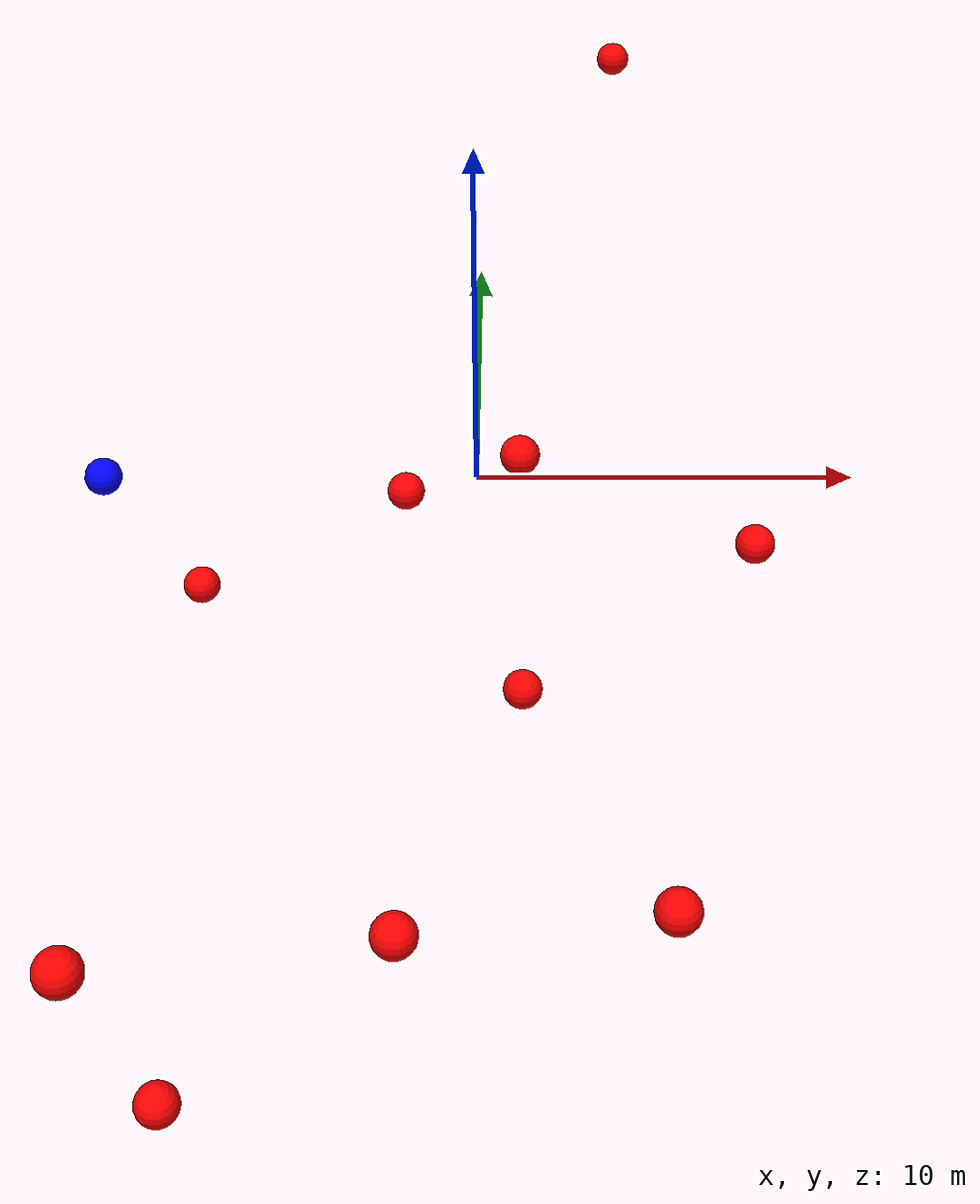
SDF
<?xml version="1.0" ?>
<sdf version="1.8">
    <world name="3d_world">
        <physics name="1ms" type="ode">
            <max_step_size>0.001</max_step_size>
            <real_time_factor>1.0</real_time_factor>
            <real_time_update_rate>1000.0</real_time_update_rate>
        </physics>
        <gravity>0 0 0</gravity>

        <plugin
            filename="gz-sim-physics-system"
            name="gz::sim::v8::systems::Physics">
        </plugin>
        <plugin
            filename="libignition-gazebo-user-commands-system.so"
            name="ignition::gazebo::systems::UserCommands">
        </plugin>
        <plugin
            filename="gz-sim-scene-broadcaster-system"
            name="gz::sim::systems::SceneBroadcaster">
        </plugin>
        <plugin
            filename="gz-sim-sensors-system"
            name="gz::sim::systems::Sensors">
            <render_engine>ogre2</render_engine>
        </plugin>

        <light type="directional" name="sun">
            <cast_shadows>true</cast_shadows>
            <pose>0 0 10 0 0 0</pose>
            <diffuse>0.8 0.8 0.8 1</diffuse>
            <specular>0.2 0.2 0.2 1</specular>
            <attenuation>
                <range>1000</range>
                <constant>0.9</constant>
                <linear>0.01</linear>
                <quadratic>0.001</quadratic>
            </attenuation>
            <direction>-0.5 0.1 -0.9</direction>
        </light>

        <!-- AGENTE -->
        <model name='agente' canonical_link='chassis'>
            <pose relative_to='world'>-10.0 0 0.0 0 0 0</pose>
            <link name='chassis'>
                <pose relative_to='__model__'>0.0 0 0.0 0 0 0</pose>
                <inertial>
                    <mass>1.14395</mass>
                    <inertia>
                        <ixx>0.095329</ixx>
                        <ixy>0</ixy>
                        <ixz>0</ixz>
                        <iyy>0.381317</iyy>
                        <iyz>0</iyz>
                        <izz>0.476646</izz>
                    </inertia>
                </inertial>
                <visual name='visual'>
                    <geometry>
                        <sphere>
                            <radius>0.5</radius>
                        </sphere>
                    </geometry>
                    <material>
                        <ambient>0.0 0.0 1.0 1</ambient>
                        <diffuse>0.0 0.0 1.0 1</diffuse>
                        <specular>0.0 0.0 1.0 1</specular>
                    </material>
                </visual>
                <collision name='collision'>
                    <geometry>
                        <sphere>
                            <radius>0.5</radius>
                        </sphere>
                    </geometry>
                </collision>
                <enable_gravity>false</enable_gravity>
            </link>

            <link name='lidar_link'>
                <pose relative_to='chassis'>0.0 0 0.1 0 0 0</pose>
                <inertial>
                    <mass>0.1</mass>
                    <inertia>
                        <ixx>0.000166667</ixx>
                        <iyy>0.000166667</iyy>
                        <izz>0.000166667</izz>
                    </inertia>
                </inertial>
                <collision name='collision'>
                    <geometry>
                        <cylinder>
                            <radius>0.05</radius>
                            <length>0.1</length>
                        </cylinder>
                    </geometry>
                </collision>
                <visual name='visual'>
                    <geometry>
                        <cylinder>
                            <radius>0.05</radius>
                            <length>0.1</length>
                        </cylinder>
                    </geometry>
                    <material>
                        <ambient>0.0 1.0 0.0 1</ambient>
                        <diffuse>0.0 1.0 0.0 1</diffuse>
                        <specular>0.0 1.0 0.0 1</specular>
                    </material>
                </visual>
                <sensor name="lidar" type="gpu_lidar">
                    <topic>scan</topic>
                    <update_rate>10</update_rate>
                    <lidar>
                        <scan>
                            <horizontal>
                                <samples>5000</samples>
                                <resolution>1</resolution>
                                <min_angle>-3.14159</min_angle>
                                <max_angle>3.14159</max_angle>
                            </horizontal>
                        </scan>
                        <range>
                            <min>0.1</min>
                            <max>10.0</max>
                            <resolution>0.01</resolution>
                        </range>
                    </lidar>
                    <visualize>true</visualize>
                    <always_on>true</always_on>
                    <update_rate>10</update_rate>
                    <pose_frame>lidar</pose_frame>
                </sensor>
                <enable_gravity>false</enable_gravity>
            </link>

            <joint name="lidar_joint" type="fixed">
                <parent>chassis</parent>
                <child>lidar_link</child>
            </joint>

            <plugin
                filename="ignition-gazebo-joint-state-publisher-system"
                name="ignition::gazebo::systems::JointStatePublisher">
            </plugin>
            <plugin
                filename="ignition-gazebo-odometry-publisher-system"
                name="ignition::gazebo::systems::OdometryPublisher">
                <dimensions>3</dimensions>
            </plugin>
            <plugin
                filename="ignition-gazebo-velocity-control-system"
                name="ignition::gazebo::systems::VelocityControl">
                <initial_linear>0.0 0 0</initial_linear>
                <initial_angular>0 0 0.0</initial_angular>
            </plugin>
            <plugin
                filename="libignition-gazebo-pose-publisher-system.so"
                name="ignition::gazebo::systems::PosePublisher">
                <topic>/agente/pose</topic>
                <frame_id>agente</frame_id>
                <update_rate>30</update_rate>
            </plugin>
        </model>

        <!-- OBSTACLE 1 -->
        <model name='obstacle_1' canonical_link='obstacle'>
            <static>false</static>
            <pose relative_to='world'>-7.56 -0.79 -3.17 0 0 0</pose>
            <link name='obstacle'>
                <pose relative_to='__model__'>0.0 0 0.0 0 0 0</pose>
                <visual name='visual'>
                    <geometry>
                        <sphere>
                            <radius>0.50</radius>
                        </sphere>
                    </geometry>
                    <material>
                        <ambient>1.0 0.0 0.0 1</ambient>
                        <diffuse>1.0 0.0 0.0 1</diffuse>
                        <specular>1.0 0.0 0.0 1</specular>
                    </material>
                </visual>
                <collision name='collision'>
                    <geometry>
                        <sphere>
                            <radius>0.50</radius>
                        </sphere>
                    </geometry>
                </collision>
                <enable_gravity>false</enable_gravity>
            </link>

            <plugin
                filename="ignition-gazebo-velocity-control-system"
                name="ignition::gazebo::systems::VelocityControl">
                <initial_linear>1.77 0.22 0.90</initial_linear>
                <initial_angular>0 0 0</initial_angular>
            </plugin>

            <plugin
                filename="ignition-gazebo-odometry-publisher-system"
                name="ignition::gazebo::systems::OdometryPublisher">
                <dimensions>3</dimensions>
            </plugin>
        </model>

        <!-- OBSTACLE 2 -->
        <model name='obstacle_2' canonical_link='obstacle'>
            <static>false</static>
            <pose relative_to='world'>-1.91 0.02 -0.49 0 0 0</pose>
            <link name='obstacle'>
                <pose relative_to='__model__'>0.0 0 0.0 0 0 0</pose>
                <visual name='visual'>
                    <geometry>
                        <sphere>
                            <radius>0.50</radius>
                        </sphere>
                    </geometry>
                    <material>
                        <ambient>1.0 0.0 0.0 1</ambient>
                        <diffuse>1.0 0.0 0.0 1</diffuse>
                        <specular>1.0 0.0 0.0 1</specular>
                    </material>
                </visual>
                <collision name='collision'>
                    <geometry>
                        <sphere>
                            <radius>0.50</radius>
                        </sphere>
                    </geometry>
                </collision>
                <enable_gravity>false</enable_gravity>
            </link>

            <plugin
                filename="ignition-gazebo-velocity-control-system"
                name="ignition::gazebo::systems::VelocityControl">
                <initial_linear>-1.33 -0.01 0.23</initial_linear>
                <initial_angular>0 0 0</initial_angular>
            </plugin>

            <plugin
                filename="ignition-gazebo-odometry-publisher-system"
                name="ignition::gazebo::systems::OdometryPublisher">
                <dimensions>3</dimensions>
            </plugin>
        </model>

        <!-- OBSTACLE 3 -->
        <model name='obstacle_3' canonical_link='obstacle'>
            <static>false</static>
            <pose relative_to='world'>7.08 -3.38 0.58 0 0 0</pose>
            <link name='obstacle'>
                <pose relative_to='__model__'>0.0 0 0.0 0 0 0</pose>
                <visual name='visual'>
                    <geometry>
                        <sphere>
                            <radius>0.50</radius>
                        </sphere>
                    </geometry>
                    <material>
                        <ambient>1.0 0.0 0.0 1</ambient>
                        <diffuse>1.0 0.0 0.0 1</diffuse>
                        <specular>1.0 0.0 0.0 1</specular>
                    </material>
                </visual>
                <collision name='collision'>
                    <geometry>
                        <sphere>
                            <radius>0.50</radius>
                        </sphere>
                    </geometry>
                </collision>
                <enable_gravity>false</enable_gravity>
            </link>

            <plugin
                filename="ignition-gazebo-velocity-control-system"
                name="ignition::gazebo::systems::VelocityControl">
                <initial_linear>-1.30 0.75 -0.13</initial_linear>
                <initial_angular>0 0 0</initial_angular>
            </plugin>

            <plugin
                filename="ignition-gazebo-odometry-publisher-system"
                name="ignition::gazebo::systems::OdometryPublisher">
                <dimensions>3</dimensions>
            </plugin>
        </model>

        <!-- OBSTACLE 4 -->
        <model name='obstacle_4' canonical_link='obstacle'>
            <static>false</static>
            <pose relative_to='world'>-6.39 -17.76 -2.35 0 0 0</pose>
            <link name='obstacle'>
                <pose relative_to='__model__'>0.0 0 0.0 0 0 0</pose>
                <visual name='visual'>
                    <geometry>
                        <sphere>
                            <radius>0.50</radius>
                        </sphere>
                    </geometry>
                    <material>
                        <ambient>1.0 0.0 0.0 1</ambient>
                        <diffuse>1.0 0.0 0.0 1</diffuse>
                        <specular>1.0 0.0 0.0 1</specular>
                    </material>
                </visual>
                <collision name='collision'>
                    <geometry>
                        <sphere>
                            <radius>0.50</radius>
                        </sphere>
                    </geometry>
                </collision>
                <enable_gravity>false</enable_gravity>
            </link>

            <plugin
                filename="ignition-gazebo-velocity-control-system"
                name="ignition::gazebo::systems::VelocityControl">
                <initial_linear>0.88 1.78 0.24</initial_linear>
                <initial_angular>0 0 0</initial_angular>
            </plugin>

            <plugin
                filename="ignition-gazebo-odometry-publisher-system"
                name="ignition::gazebo::systems::OdometryPublisher">
                <dimensions>3</dimensions>
            </plugin>
        </model>

        <!-- OBSTACLE 5 -->
        <model name='obstacle_5' canonical_link='obstacle'>
            <static>false</static>
            <pose relative_to='world'>4.24 -16.37 2.17 0 0 0</pose>
            <link name='obstacle'>
                <pose relative_to='__model__'>0.0 0 0.0 0 0 0</pose>
                <visual name='visual'>
                    <geometry>
                        <sphere>
                            <radius>0.50</radius>
                        </sphere>
                    </geometry>
                    <material>
                        <ambient>1.0 0.0 0.0 1</ambient>
                        <diffuse>1.0 0.0 0.0 1</diffuse>
                        <specular>1.0 0.0 0.0 1</specular>
                    </material>
                </visual>
                <collision name='collision'>
                    <geometry>
                        <sphere>
                            <radius>0.50</radius>
                        </sphere>
                    </geometry>
                </collision>
                <enable_gravity>false</enable_gravity>
            </link>

            <plugin
                filename="ignition-gazebo-velocity-control-system"
                name="ignition::gazebo::systems::VelocityControl">
                <initial_linear>-0.57 1.90 -0.25</initial_linear>
                <initial_angular>0 0 0</initial_angular>
            </plugin>

            <plugin
                filename="ignition-gazebo-odometry-publisher-system"
                name="ignition::gazebo::systems::OdometryPublisher">
                <dimensions>3</dimensions>
            </plugin>
        </model>

        <!-- OBSTACLE 6 -->
        <model name='obstacle_6' canonical_link='obstacle'>
            <static>false</static>
            <pose relative_to='world'>-7.39 -19.04 3.68 0 0 0</pose>
            <link name='obstacle'>
                <pose relative_to='__model__'>0.0 0 0.0 0 0 0</pose>
                <visual name='visual'>
                    <geometry>
                        <sphere>
                            <radius>0.50</radius>
                        </sphere>
                    </geometry>
                    <material>
                        <ambient>1.0 0.0 0.0 1</ambient>
                        <diffuse>1.0 0.0 0.0 1</diffuse>
                        <specular>1.0 0.0 0.0 1</specular>
                    </material>
                </visual>
                <collision name='collision'>
                    <geometry>
                        <sphere>
                            <radius>0.50</radius>
                        </sphere>
                    </geometry>
                </collision>
                <enable_gravity>false</enable_gravity>
            </link>

            <plugin
                filename="ignition-gazebo-velocity-control-system"
                name="ignition::gazebo::systems::VelocityControl">
                <initial_linear>1.08 1.65 -0.32</initial_linear>
                <initial_angular>0 0 0</initial_angular>
            </plugin>

            <plugin
                filename="ignition-gazebo-odometry-publisher-system"
                name="ignition::gazebo::systems::OdometryPublisher">
                <dimensions>3</dimensions>
            </plugin>
        </model>

        <!-- OBSTACLE 7 -->
        <model name='obstacle_7' canonical_link='obstacle'>
            <static>false</static>
            <pose relative_to='world'>4.16 17.11 3.54 0 0 0</pose>
            <link name='obstacle'>
                <pose relative_to='__model__'>0.0 0 0.0 0 0 0</pose>
                <visual name='visual'>
                    <geometry>
                        <sphere>
                            <radius>0.50</radius>
                        </sphere>
                    </geometry>
                    <material>
                        <ambient>1.0 0.0 0.0 1</ambient>
                        <diffuse>1.0 0.0 0.0 1</diffuse>
                        <specular>1.0 0.0 0.0 1</specular>
                    </material>
                </visual>
                <collision name='collision'>
                    <geometry>
                        <sphere>
                            <radius>0.50</radius>
                        </sphere>
                    </geometry>
                </collision>
                <enable_gravity>false</enable_gravity>
            </link>

            <plugin
                filename="ignition-gazebo-velocity-control-system"
                name="ignition::gazebo::systems::VelocityControl">
                <initial_linear>-0.32 -1.93 -0.40</initial_linear>
                <initial_angular>0 0 0</initial_angular>
            </plugin>

            <plugin
                filename="ignition-gazebo-odometry-publisher-system"
                name="ignition::gazebo::systems::OdometryPublisher">
                <dimensions>3</dimensions>
            </plugin>
        </model>

        <!-- OBSTACLE 8 -->
        <model name='obstacle_8' canonical_link='obstacle'>
            <static>false</static>
            <pose relative_to='world'>-1.40 -16.69 1.80 0 0 0</pose>
            <link name='obstacle'>
                <pose relative_to='__model__'>0.0 0 0.0 0 0 0</pose>
                <visual name='visual'>
                    <geometry>
                        <sphere>
                            <radius>0.50</radius>
                        </sphere>
                    </geometry>
                    <material>
                        <ambient>1.0 0.0 0.0 1</ambient>
                        <diffuse>1.0 0.0 0.0 1</diffuse>
                        <specular>1.0 0.0 0.0 1</specular>
                    </material>
                </visual>
                <collision name='collision'>
                    <geometry>
                        <sphere>
                            <radius>0.50</radius>
                        </sphere>
                    </geometry>
                </collision>
                <enable_gravity>false</enable_gravity>
            </link>

            <plugin
                filename="ignition-gazebo-velocity-control-system"
                name="ignition::gazebo::systems::VelocityControl">
                <initial_linear>0.52 1.92 -0.21</initial_linear>
                <initial_angular>0 0 0</initial_angular>
            </plugin>

            <plugin
                filename="ignition-gazebo-odometry-publisher-system"
                name="ignition::gazebo::systems::OdometryPublisher">
                <dimensions>3</dimensions>
            </plugin>
        </model>

        <!-- OBSTACLE 9 -->
        <model name='obstacle_9' canonical_link='obstacle'>
            <static>false</static>
            <pose relative_to='world'>1.13 -2.43 2.68 0 0 0</pose>
            <link name='obstacle'>
                <pose relative_to='__model__'>0.0 0 0.0 0 0 0</pose>
                <visual name='visual'>
                    <geometry>
                        <sphere>
                            <radius>0.50</radius>
                        </sphere>
                    </geometry>
                    <material>
                        <ambient>1.0 0.0 0.0 1</ambient>
                        <diffuse>1.0 0.0 0.0 1</diffuse>
                        <specular>1.0 0.0 0.0 1</specular>
                    </material>
                </visual>
                <collision name='collision'>
                    <geometry>
                        <sphere>
                            <radius>0.50</radius>
                        </sphere>
                    </geometry>
                </collision>
                <enable_gravity>false</enable_gravity>
            </link>

            <plugin
                filename="ignition-gazebo-velocity-control-system"
                name="ignition::gazebo::systems::VelocityControl">
                <initial_linear>0.78 0.38 -0.41</initial_linear>
                <initial_angular>0 0 0</initial_angular>
            </plugin>

            <plugin
                filename="ignition-gazebo-odometry-publisher-system"
                name="ignition::gazebo::systems::OdometryPublisher">
                <dimensions>3</dimensions>
            </plugin>
        </model>

        <!-- OBSTACLE 10 -->
        <model name='obstacle_10' canonical_link='obstacle'>
            <static>false</static>
            <pose relative_to='world'>1.21 -6.02 -1.96 0 0 0</pose>
            <link name='obstacle'>
                <pose relative_to='__model__'>0.0 0 0.0 0 0 0</pose>
                <visual name='visual'>
                    <geometry>
                        <sphere>
                            <radius>0.50</radius>
                        </sphere>
                    </geometry>
                    <material>
                        <ambient>1.0 0.0 0.0 1</ambient>
                        <diffuse>1.0 0.0 0.0 1</diffuse>
                        <specular>1.0 0.0 0.0 1</specular>
                    </material>
                </visual>
                <collision name='collision'>
                    <geometry>
                        <sphere>
                            <radius>0.50</radius>
                        </sphere>
                    </geometry>
                </collision>
                <enable_gravity>false</enable_gravity>
            </link>

            <plugin
                filename="ignition-gazebo-velocity-control-system"
                name="ignition::gazebo::systems::VelocityControl">
                <initial_linear>-1.31 1.43 0.47</initial_linear>
                <initial_angular>0 0 0</initial_angular>
            </plugin>

            <plugin
                filename="ignition-gazebo-odometry-publisher-system"
                name="ignition::gazebo::systems::OdometryPublisher">
                <dimensions>3</dimensions>
            </plugin>
        </model>

    </world>
</sdf>
